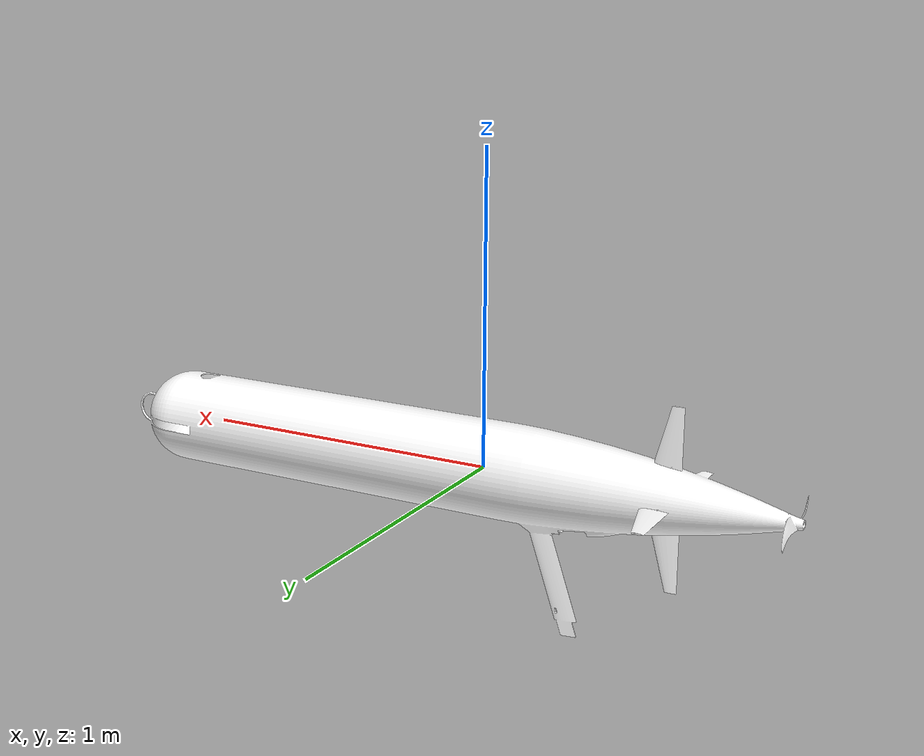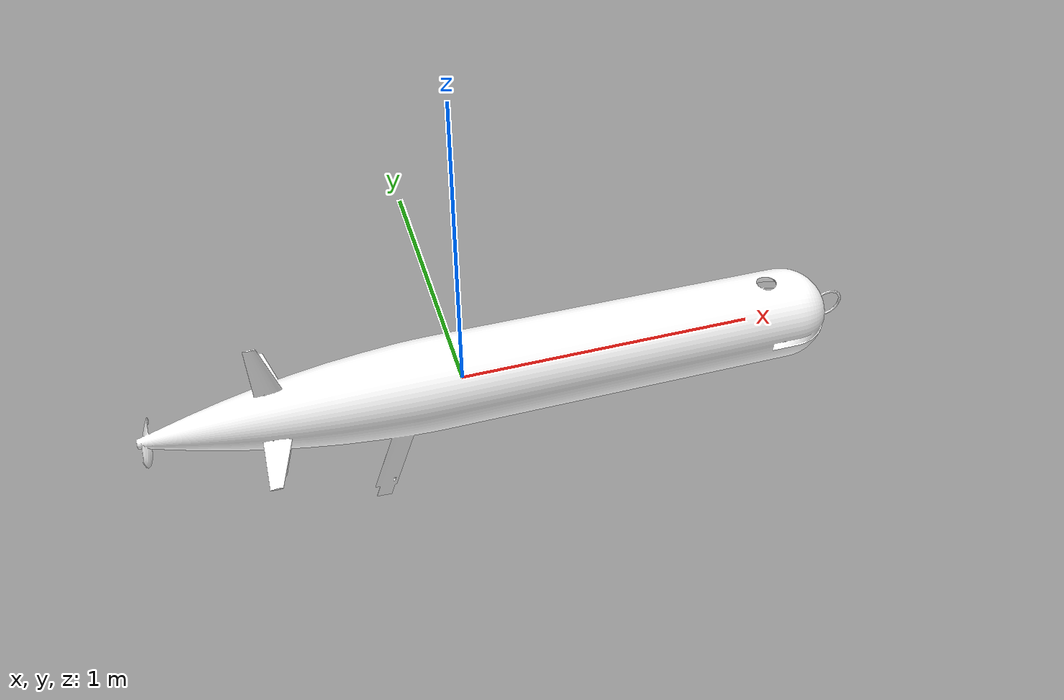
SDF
<?xml version="1.0" ?>
<sdf version="1.6">
  <world name="empty_environment">
    <scene>
      <ambient>1.0 1.0 1.0 1.0</ambient>
      <background>0.0 0.7 0.8</background>
      <grid>true</grid>
    </scene>
    <physics name="1ms" type="ode">
      <max_step_size>0.001</max_step_size>
      <real_time_factor>0</real_time_factor>
    </physics>
    <light type="directional" name="sun">
      <cast_shadows>false</cast_shadows>
      <pose>0 0 10 0 0 0</pose>
      <diffuse>1 1 1 1</diffuse>
      <specular>0.5 0.5 0.5 1</specular>
      <attenuation>
        <range>1000</range>
        <constant>0.9</constant>
        <linear>0.01</linear>
        <quadratic>0.001</quadratic>
      </attenuation>
      <direction>-0.5 0.1 -0.9</direction>
    </light>
    <plugin filename="gz-sim-physics-system"
      name="gz::sim::systems::Physics">
    </plugin>
    <plugin filename="gz-sim-buoyancy-system"
      name="gz::sim::systems::Buoyancy">
      <uniform_fluid_density>1025</uniform_fluid_density>
    </plugin>
    <plugin filename="gz-sim-user-commands-system"
      name="gz::sim::systems::UserCommands">
    </plugin>
    <plugin filename="gz-sim-scene-broadcaster-system"
      name="gz::sim::systems::SceneBroadcaster">
    </plugin>
    <gui fullscreen="0">
      <plugin filename="MinimalScene" name="3D View">
        <gz-gui>
          <title>3D View</title>
          <property type="bool" key="showTitleBar">false</property>
          <property type="string" key="state">docked</property>
        </gz-gui>
        <engine>ogre2</engine>
        <scene>scene</scene>
        <ambient_light>0.8 0.8 0.8</ambient_light>
        <background_color>0.0 0.7 0.8</background_color>
        <camera_pose>0 6 6 0 0.5 -1.57</camera_pose>
        <camera_clip>
          <near>0.1</near>
          <far>3000000</far>
        </camera_clip>
      </plugin>
      <plugin filename="EntityContextMenuPlugin" name="Entity context menu">
        <gz-gui>
          <property key="state" type="string">floating</property>
          <property key="width" type="double">5</property>
          <property key="height" type="double">5</property>
          <property key="showTitleBar" type="bool">false</property>
        </gz-gui>
      </plugin>
      <plugin filename="GzSceneManager" name="Scene Manager">
        <gz-gui>
          <anchors target="3D View">
            <line own="right" target="right"/>
            <line own="top" target="top"/>
          </anchors>
          <property key="resizable" type="bool">false</property>
          <property key="width" type="double">5</property>
          <property key="height" type="double">5</property>
          <property key="state" type="string">floating</property>
          <property key="showTitleBar" type="bool">false</property>
        </gz-gui>
      </plugin>
      <plugin filename="InteractiveViewControl" name="Interactive view control">
        <gz-gui>
          <anchors target="3D View">
            <line own="right" target="right"/>
            <line own="top" target="top"/>
          </anchors>
          <property key="resizable" type="bool">false</property>
          <property key="width" type="double">5</property>
          <property key="height" type="double">5</property>
          <property key="state" type="string">floating</property>
          <property key="showTitleBar" type="bool">false</property>
        </gz-gui>
      </plugin>
      <plugin filename="WorldControl" name="World control">
        <gz-gui>
          <title>World control</title>
          <property type="bool" key="showTitleBar">false</property>
          <property type="bool" key="resizable">false</property>
          <property type="double" key="height">72</property>
          <property type="double" key="width">121</property>
          <property type="double" key="z">1</property>
          <property type="string" key="state">floating</property>
          <anchors target="3D View">
            <line own="left" target="left"/>
            <line own="bottom" target="bottom"/>
          </anchors>
        </gz-gui>
        <play_pause>true</play_pause>
        <step>true</step>
        <start_paused>true</start_paused>
      </plugin>
      <plugin filename="WorldStats" name="World stats">
        <gz-gui>
          <title>World stats</title>
          <property type="bool" key="showTitleBar">false</property>
          <property type="bool" key="resizable">false</property>
          <property type="double" key="height">110</property>
          <property type="double" key="width">290</property>
          <property type="double" key="z">1</property>
          <property type="string" key="state">floating</property>
          <anchors target="3D View">
            <line own="right" target="right"/>
            <line own="bottom" target="bottom"/>
          </anchors>
        </gz-gui>
        <sim_time>true</sim_time>
        <real_time>true</real_time>
        <real_time_factor>true</real_time_factor>
        <iterations>true</iterations>
      </plugin>
      <plugin filename="Plot3D" name="Plot 3D">
        <gz-gui>
          <title>Plot Tethys 3D path</title>
          <property type="string" key="state">docked_collapsed</property>
        </gz-gui>
        <entity_name>tethys</entity_name>
        <color>0 0 1</color>
        <maximum_points>10000</maximum_points>
        <minimum_distance>0.5</minimum_distance>
      </plugin>
      <plugin filename="ComponentInspector" name="Component Inspector">
        <gz-gui>
          <title>Inspector</title>
          <property type="string" key="state">docked_collapsed</property>
        </gz-gui>
      </plugin>
    </gui>
    <include>
      <pose>0 0 0 0 0 0</pose>
      <uri>tethys_equipped</uri>
    </include>
  </world>
</sdf>

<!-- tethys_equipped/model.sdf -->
<sdf version="1.9" xmlns:experimental="http://sdformat.org/schemas/experimental">
  <model name="tethys_0">
    <enable_wind>true</enable_wind>
    <include merge="true">

      <pose degrees="true">0 0 0 0 0 0</pose>
      <uri>tethys</uri>

      <plugin filename="gz-sim-joint-position-controller-system"
        name="gz::sim::systems::JointPositionController">
        <joint_name>horizontal_fins_joint</joint_name>
        <p_gain>0.1</p_gain>
      </plugin>

      <plugin filename="gz-sim-joint-position-controller-system"
        name="gz::sim::systems::JointPositionController">
        <joint_name>vertical_fins_joint</joint_name>
        <p_gain>0.1</p_gain>
      </plugin>

      <plugin filename="gz-sim-thruster-system"
        name="gz::sim::systems::Thruster">
        <namespace>tethys_0</namespace>
        <joint_name>propeller_joint</joint_name>
        <thrust_coefficient>0.004422</thrust_coefficient>
        <fluid_density>1025</fluid_density>
        <propeller_diameter>0.2</propeller_diameter>
      </plugin>

      <plugin filename="gz-sim-lift-drag-system"
        name="gz::sim::systems::LiftDrag">
        <air_density>1025</air_density>
        <cla>4.13</cla>
        <cla_stall>-1.1</cla_stall>
        <cda>0.2</cda>
        <cda_stall>0.03</cda_stall>
        <alpha_stall>0.17</alpha_stall>
        <a0>0</a0>
        <area>0.0244</area>
        <upward>0 1 0</upward>
        <forward>-1 0 0</forward>
        <link_name>vertical_fins</link_name>
        <cp>0 0 0</cp>
      </plugin>

      <plugin filename="gz-sim-lift-drag-system"
        name="gz::sim::systems::LiftDrag">
        <air_density>1025</air_density>
        <cla>4.13</cla>
        <cla_stall>-1.1</cla_stall>
        <cda>0.2</cda>
        <cda_stall>0.03</cda_stall>
        <alpha_stall>0.17</alpha_stall>
        <a0>0</a0>
        <area>0.0244</area>
        <upward>0 0 1</upward>
        <forward>-1 0 0</forward>
        <link_name>horizontal_fins</link_name>
        <cp>0 0 0</cp>
      </plugin>

      <plugin filename="HydrodynamicsPlugin"
        name="tethys::HydrodynamicsPlugin">
        <link_name>base_link</link_name>
        <enable_coriolis>false</enable_coriolis>
        <xDotU>-4.876161</xDotU>
        <yDotV>-126.324739</yDotV>
        <zDotW>-126.324739</zDotW>
        <kDotP>0</kDotP>
        <mDotQ>-33.46</mDotQ>
        <nDotR>-33.46</nDotR>
        <xUU>-6.2282</xUU>
        <xU>0</xU>
        <yVV>-601.27</yVV>
        <yV>0</yV>
        <zWW>-601.27</zWW>
        <zW>0</zW>
        <kPP>-0.1916</kPP>
        <kP>0</kP>
        <mQQ>-632.698957</mQQ>
        <mQ>0</mQ>
        <nRR>-632.698957</nRR>
        <nR>0</nR>
      </plugin>

      <plugin filename="NavigationPlugin"
        name="tethys::NavigationPlugin">
        <world_name>empty_environment</world_name>
        <namespace>tethys_0</namespace>

        <!-- GOAL -->
        <goal_x>159.81</goal_x>
        <goal_y>57.58</goal_y>
        <goal_z>-72.49</goal_z>

        <!-- CONTROLLO -->
        <gain_steer>0.8</gain_steer>
        <gain_pitch>1.5</gain_pitch>
        <max_fin_angle>0.15</max_fin_angle>
        <radius_arrived>10.0</radius_arrived>
        <max_iterations>200000</max_iterations>

        <!-- LIDAR -->
        <r_max>50.0</r_max>
        <r_min>2.5</r_min>
        <r_active>37.5</r_active>

        <!-- VFH -->
        <valley_threshold>34.4</valley_threshold>
        <smooth_l>5</smooth_l>
        <safety_window>2</safety_window>
        <grid_decay>0.982</grid_decay>
        <magnitude_a>10.88</magnitude_a>
      </plugin>

      <experimental:params>
        <sensor element_id="base_link::contact_sensor" action="modify">
          <topic>/tethys_0/contact</topic>
        </sensor>
        <sensor element_id="lidar_link::gpu_lidar" action="modify">
          <topic>/tethys_0/lidar</topic>
        </sensor>
      </experimental:params>

    </include>
  </model>
</sdf>

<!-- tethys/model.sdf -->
<sdf version="1.6">
  <model name="tethys">
    <enable_wind>true</enable_wind>

    <link name="base_link">
      <inertial>

        <pose>0.0 0 0 0 0 0 </pose>

        <mass>147.8671</mass>

        <inertia>
          <ixx>3.000000</ixx>
          <ixy>0</ixy>
          <ixz>0</ixz>
          <iyy>41.980233</iyy>
          <iyz>0</iyz>
          <izz>41.980233</izz>

        </inertia>
      </inertial>

      <collision name="main_body_buoyancy"><pose>0 0 0.007 0 0 0 </pose><geometry><box><size>2.0 0.4 0.18032573170731706 </size></box></geometry></collision>

      <sensor name="contact_sensor" type="contact">
        <contact>
          <collision>main_body_buoyancy</collision>
        </contact>
        <always_on>true</always_on>
        <update_rate>100</update_rate>
        <topic>/tethys/contact</topic>
      </sensor>

      <visual name="visual">
        <geometry>
          <mesh>
            <uri>meshes/tethys.dae</uri>
            <submesh>
              <name>Body</name>
              <center>false</center>
            </submesh>
          </mesh>
        </geometry>
        <material>
          <diffuse>1.0 1.0 1.0 1.0</diffuse>
          <specular>1.0 1.0 1.0 1.0</specular>
          <pbr>
            <metal>
              <albedo_map>materials/textures/Tethys_Albedo.png</albedo_map>
              <normal_map>materials/textures/Tethys_Normal.png</normal_map>
              <metalness_map>materials/textures/Tethys_Metalness.png</metalness_map>
              <roughness_map>materials/textures/Tethys_Roughness.png</roughness_map>
            </metal>
          </pbr>
          <script>
            <uri>materials/scripts/</uri>
            <uri>materials/textures/</uri>
            <name>tethys/Tethys_Diffuse</name>
          </script>
        </material>
      </visual>
    </link>

    <link name="horizontal_fins">
      <pose>1.05 0 0 0 0 0</pose>
      <inertial>
        <mass>0.2</mass>
        <inertia>
          <ixx>0.0007924568755</ixx>
          <ixy>-0.0000000002674</ixy>
          <ixz>0.0003978158176</ixz>
          <iyy>0.0010546736475</iyy>
          <iyz>-0.0000000006729</iyz>
          <izz>0.0002633558262</izz>
        </inertia>
      </inertial>

      <collision name="horizontal_fins_buoyancy"><geometry><box><size>0.1 0.1 0.019512195121951216 </size></box></geometry></collision>

      <visual name="visual">
        <pose>-1.05 0 0 0 0 0</pose>
        <geometry>
          <mesh>
            <uri>meshes/tethys.dae</uri>
            <submesh>
              <name>Fins_Horizontal</name>
              <center>false</center>
            </submesh>
          </mesh>
        </geometry>
        <material>
          <diffuse>1.0 1.0 1.0</diffuse>
          <specular>1.0 1.0 1.0</specular>
          <pbr>
            <metal>
              <albedo_map>materials/textures/Tethys_Albedo.png</albedo_map>
              <normal_map>materials/textures/Tethys_Normal.png</normal_map>
              <metalness_map>materials/textures/Tethys_Metalness.png</metalness_map>
              <roughness_map>materials/textures/Tethys_Roughness.png</roughness_map>
            </metal>
          </pbr>
          <script>
            <uri>materials/scripts/</uri>
            <uri>materials/textures/</uri>
            <name>tethys/Tethys_Diffuse</name>
          </script>
        </material>
      </visual>
    </link>

    <link name="vertical_fins">
      <pose>1.05 0 0 0 0 0</pose>
      <inertial>
        <mass>0.2</mass>
        <inertia>
          <ixx>0.0007924568755</ixx>
          <ixy>-0.0000000002674</ixy>
          <ixz>0.0003978158176</ixz>
          <iyy>0.0010546736475</iyy>
          <iyz>-0.0000000006729</iyz>
          <izz>0.0002633558262</izz>
        </inertia>
      </inertial>

      <collision name="vertical_fin_buoyancy"><geometry><box><size>0.1 0.1 0.019512195121951216 </size></box></geometry></collision>

      <visual name="visual">
        <pose>-1.05 0 0 0 0 0</pose>
        <geometry>
          <mesh>
            <uri>meshes/tethys.dae</uri>
            <submesh>
              <name>Fins_vertical</name>
              <center>false</center>
            </submesh>
          </mesh>
        </geometry>
        <material>
          <diffuse>1.0 1.0 1.0</diffuse>
          <specular>1.0 1.0 1.0</specular>
          <pbr>
            <metal>
              <albedo_map>materials/textures/Tethys_Albedo.png</albedo_map>
              <normal_map>materials/textures/Tethys_Normal.png</normal_map>
              <metalness_map>materials/textures/Tethys_Metalness.png</metalness_map>
              <roughness_map>materials/textures/Tethys_Roughness.png</roughness_map>
            </metal>
          </pbr>
          <script>
            <uri>materials/scripts/</uri>
            <uri>materials/textures/</uri>
            <name>tethys/Tethys_Diffuse</name>
          </script>
        </material>
      </visual>
    </link>

    <link name="propeller">
      <pose>1.43162 0 0 0 0 0</pose>
      <inertial>
        <pose>0 0 0 0 0 0</pose>
        <mass>0.09</mass>
        <inertia>
          <ixx>0.000143971303</ixx>
          <ixy>0.000000000008</ixy>
          <ixz>-0.000000000224</ixz>
          <iyy>0.000140915448</iyy>
          <iyz>-0.000025236433</iyz>
          <izz>0.000033571862</izz>
        </inertia>
      </inertial>

      <collision name="propeller_buoyancy"><geometry><box><size>0.1 0.1 0.008780487804878046 </size></box></geometry></collision>

      <visual name="visual">
        <pose>-1.43162 0 0 0 0 0</pose>
        <geometry>
          <mesh>
            <uri>meshes/tethys.dae</uri>
            <submesh>
              <name>Prop</name>
              <center>false</center>
            </submesh>
          </mesh>
        </geometry>
        <material>
          <diffuse>1.0 1.0 1.0</diffuse>
          <specular>1.0 1.0 1.0</specular>
          <pbr>
            <metal>
              <albedo_map>materials/textures/Tethys_Albedo.png</albedo_map>
              <normal_map>materials/textures/Tethys_Normal.png</normal_map>
              <metalness_map>materials/textures/Tethys_Metalness.png</metalness_map>
              <roughness_map>materials/textures/Tethys_Roughness.png</roughness_map>
            </metal>
          </pbr>
          <script>
            <uri>materials/scripts/</uri>
            <uri>materials/textures/</uri>
            <name>tethys/Tethys_Diffuse</name>
          </script>
        </material>
      </visual>
    </link>

    <joint name="horizontal_fins_joint" type="revolute">
      <pose>0 0 0 0 0 0</pose>
      <parent>base_link</parent>
      <child>horizontal_fins</child>
      <axis>
        <xyz>0 1 0</xyz>
        <limit>
          <lower>-0.261799</lower>
          <upper>0.261799</upper>
          <effort>-1</effort>
          <velocity>-1</velocity>
        </limit>
      </axis>
    </joint>

    <joint name="vertical_fins_joint" type="revolute">
      <pose degrees="true">0 0 0   180 0 0</pose>
      <parent>base_link</parent>
      <child>vertical_fins</child>
      <axis>
        <xyz>0 0 1</xyz>
        <limit>
          <lower>-0.261799</lower>
          <upper>0.261799</upper>
          <effort>-1</effort>
          <velocity>-1</velocity>
        </limit>
      </axis>
    </joint>

    <joint name="propeller_joint" type="revolute">
      <pose degrees="true">0 0 0   0 0 0</pose>
      <parent>base_link</parent>
      <child>propeller</child>
      <axis>
        <xyz>1 0 0</xyz>
        <limit>
          <lower>-1e+12</lower>
          <upper>1e+12</upper>
          <effort>1e6</effort>
          <velocity>-1</velocity>
        </limit>
      </axis>
    </joint>

    <link name="lidar_link">
       <pose degrees="true">0 0 0 0 0 0</pose>

        <inertial>
          <mass>0.1</mass>
          <inertia>
            <ixx>0.0001</ixx><ixy>0</ixy><ixz>0</ixz>
            <iyy>0.0001</iyy><iyz>0</iyz>
            <izz>0.0001</izz>
          </inertia>
        </inertial>

        <collision name="lidar_buoyancy"><geometry><box><size>0.1 0.1 0.009756097560975608 </size></box></geometry></collision>

      <sensor name="gpu_lidar" type="gpu_lidar">
        <pose degrees="true">0 0 0   0 0 180</pose>
        <topic>/tethys/lidar</topic>
        <update_rate>10</update_rate>
        <always_on>true</always_on>
        <visualize>false</visualize>
        <lidar>
          <scan>
            <horizontal>
              <samples>36</samples>
              <resolution>1</resolution>
              <min_angle>-1.5708</min_angle>
              <max_angle>1.5708</max_angle>
            </horizontal>
            <vertical>
              <samples>36</samples>
              <resolution>1</resolution>
              <min_angle>-1.5708</min_angle>
              <max_angle>1.5708</max_angle>
            </vertical>
          </scan>
          <range>
            <min>2.5</min>
            <max>50.0</max>
            <resolution>0.01</resolution>
          </range>
          <noise>
            <type>gaussian</type>
            <mean>0.0</mean>
            <stddev>0.01</stddev>
          </noise>
        </lidar>
      </sensor>
    </link>

    <joint name="lidar_joint" type="fixed">
      <parent>base_link</parent>
      <child>lidar_link</child>
    </joint>

    </model>
</sdf>
